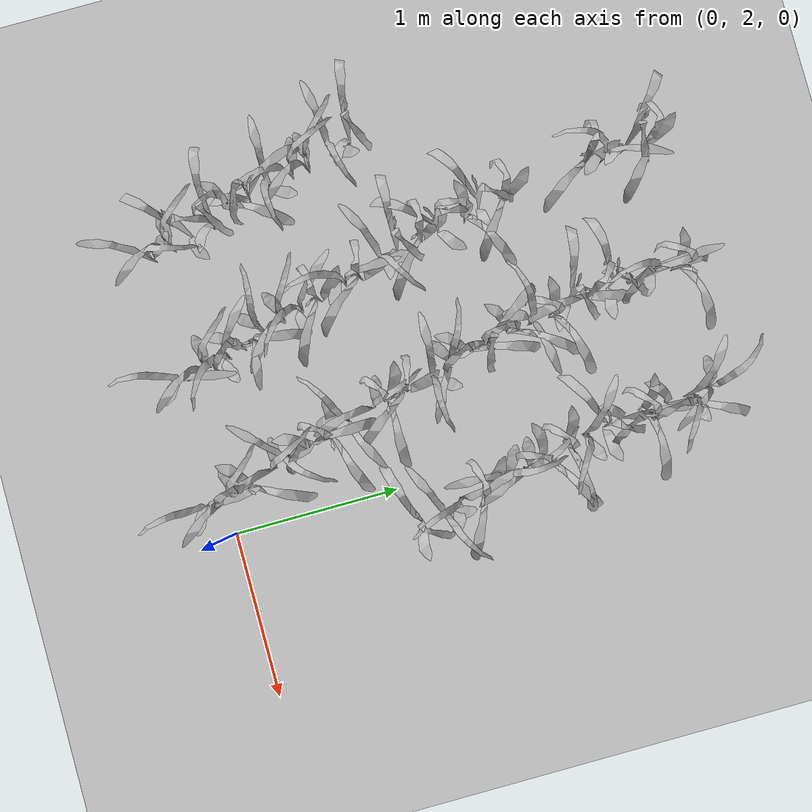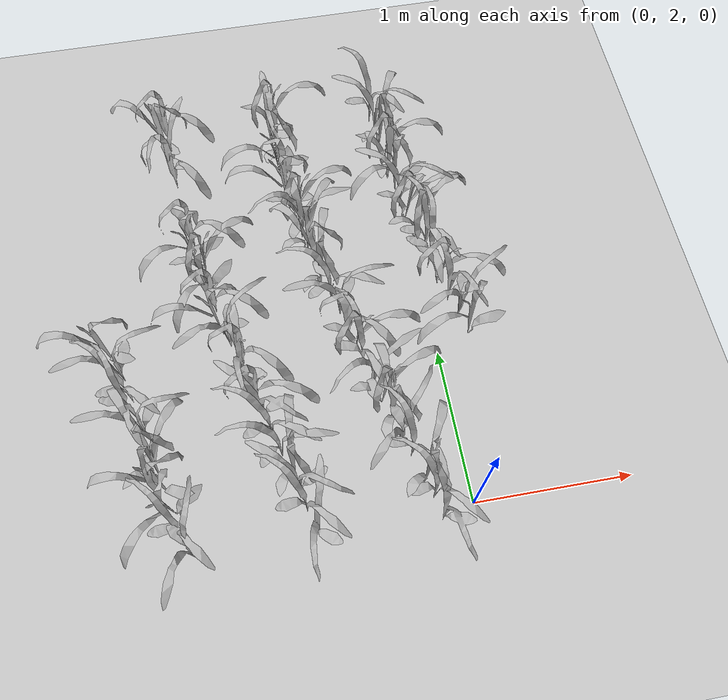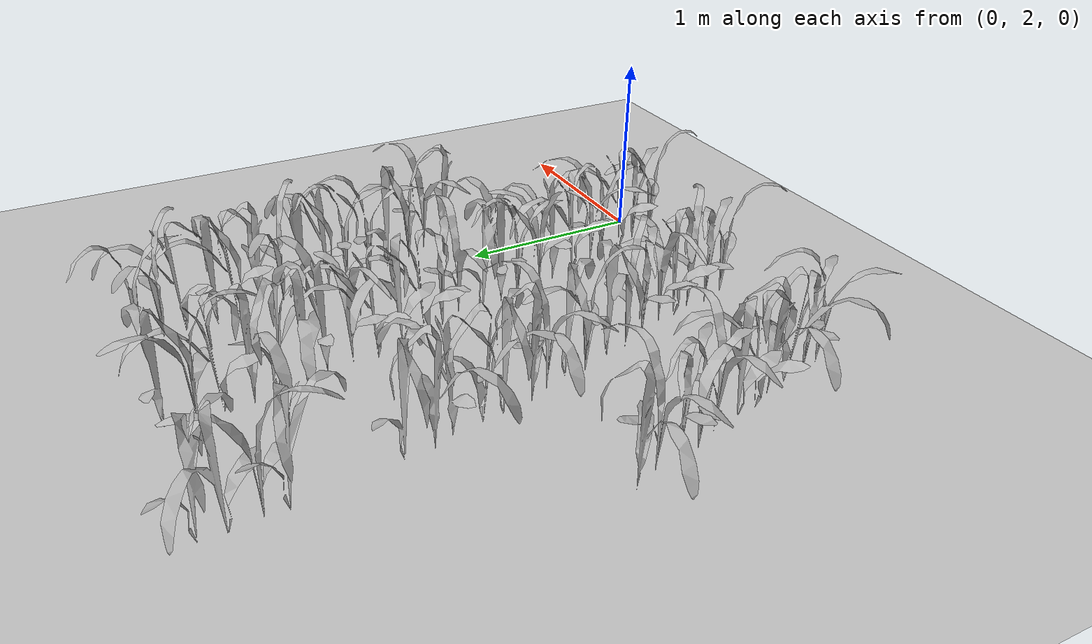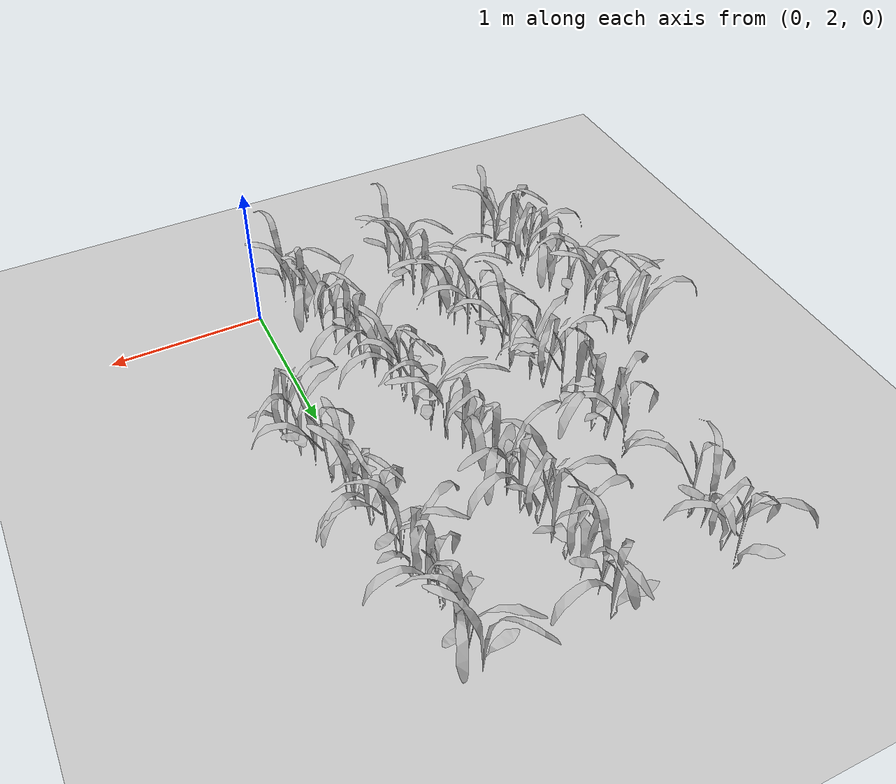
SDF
<sdf version="1.7">
 <world name="default">
  <model name="maize_02_0225">
   <pose>-1.69866 1.97323 -0 5e-06 2.8e-05 0.257611</pose>
   <link name="maize_02_link">
    <inertial>
     <pose>0 0 0.01 0 -0 0</pose>
     <mass>0.3</mass>
     <inertia>
      <ixx>0.00334167</ixx>
      <ixy>0</ixy>
      <ixz>0</ixz>
      <iyy>0.00334167</iyy>
      <iyz>0</iyz>
      <izz>1.66667e-05</izz>
     </inertia>
     <pose>0 0 0.1 0 -0 0</pose>
    </inertial>
    <visual name="visual">
     <geometry>
      <mesh><uri>model://maize_02/meshes/maize_02.dae</uri><scale>0.683166 0.683166 0.683166</scale></mesh>
     </geometry>
    </visual>
   </link>
   <static>0</static>
  </model>
  <model name="maize_02_0226">
   <pose>-1.7364 2.08989 -0.000245 -1.4e-05 -1.2e-05 1.21908</pose>
   <link name="maize_02_link">
    <inertial>
     <pose>0 0 0.01 0 -0 0</pose>
     <mass>0.3</mass>
     <inertia>
      <ixx>0.00334167</ixx>
      <ixy>0</ixy>
      <ixz>0</ixz>
      <iyy>0.00334167</iyy>
      <iyz>0</iyz>
      <izz>1.66667e-05</izz>
     </inertia>
     <pose>0 0 0.1 0 -0 0</pose>
    </inertial>
    <visual name="visual">
     <geometry>
      <mesh><uri>model://maize_02/meshes/maize_02.dae</uri><scale>0.683166 0.683166 0.683166</scale></mesh>
     </geometry>
    </visual>
   </link>
   <static>0</static>
  </model>
  <model name="maize_01_0227">
   <pose>-1.76908 2.23271 -1e-06 -6e-06 -7.9e-05 -1.51202</pose>
   <link name="maize_01_link">
    <inertial>
     <pose>0 0 0.01 0 -0 0</pose>
     <mass>0.3</mass>
     <inertia>
      <ixx>0.00334167</ixx>
      <ixy>0</ixy>
      <ixz>0</ixz>
      <iyy>0.00334167</iyy>
      <iyz>0</iyz>
      <izz>1.66667e-05</izz>
     </inertia>
     <pose>0 0 0.1 0 -0 0</pose>
    </inertial>
    <visual name="visual">
     <geometry>
      <mesh><uri>model://maize_01/meshes/maize_01.dae</uri><scale>0.683166 0.683166 0.683166</scale></mesh>
     </geometry>
    </visual>
   </link>
   <static>0</static>
  </model>
  <model name="maize_01_0228">
   <pose>-1.81012 2.37373 -0 5e-06 -2.8e-05 -2.44315</pose>
   <link name="maize_01_link">
    <inertial>
     <pose>0 0 0.01 0 -0 0</pose>
     <mass>0.3</mass>
     <inertia>
      <ixx>0.00334167</ixx>
      <ixy>0</ixy>
      <ixz>0</ixz>
      <iyy>0.00334167</iyy>
      <iyz>0</iyz>
      <izz>1.66667e-05</izz>
     </inertia>
     <pose>0 0 0.1 0 -0 0</pose>
    </inertial>
    <visual name="visual">
     <geometry>
      <mesh><uri>model://maize_01/meshes/maize_01.dae</uri><scale>0.683166 0.683166 0.683166</scale></mesh>
     </geometry>
    </visual>
   </link>
   <static>0</static>
  </model>
  <model name="maize_01_0229">
   <pose>-1.8613 2.48508 1e-06 3e-06 -0.000156 1.80592</pose>
   <link name="maize_01_link">
    <inertial>
     <pose>0 0 0.01 0 -0 0</pose>
     <mass>0.3</mass>
     <inertia>
      <ixx>0.00334167</ixx>
      <ixy>0</ixy>
      <ixz>0</ixz>
      <iyy>0.00334167</iyy>
      <iyz>0</iyz>
      <izz>1.66667e-05</izz>
     </inertia>
     <pose>0 0 0.1 0 -0 0</pose>
    </inertial>
    <visual name="visual">
     <geometry>
      <mesh><uri>model://maize_01/meshes/maize_01.dae</uri><scale>0.683166 0.683166 0.683166</scale></mesh>
     </geometry>
    </visual>
   </link>
   <static>0</static>
  </model>
  <model name="maize_01_0230">
   <pose>-1.88281 2.60481 -0 -5e-06 -2.8e-05 2.79415</pose>
   <link name="maize_01_link">
    <inertial>
     <pose>0 0 0.01 0 -0 0</pose>
     <mass>0.3</mass>
     <inertia>
      <ixx>0.00334167</ixx>
      <ixy>0</ixy>
      <ixz>0</ixz>
      <iyy>0.00334167</iyy>
      <iyz>0</iyz>
      <izz>1.66667e-05</izz>
     </inertia>
     <pose>0 0 0.1 0 -0 0</pose>
    </inertial>
    <visual name="visual">
     <geometry>
      <mesh><uri>model://maize_01/meshes/maize_01.dae</uri><scale>0.683166 0.683166 0.683166</scale></mesh>
     </geometry>
    </visual>
   </link>
   <static>0</static>
  </model>
  <model name="maize_02_0231">
   <pose>-1.91741 2.75949 -0.000245 1.2e-05 1.4e-05 -0.972009</pose>
   <link name="maize_02_link">
    <inertial>
     <pose>0 0 0.01 0 -0 0</pose>
     <mass>0.3</mass>
     <inertia>
      <ixx>0.00334167</ixx>
      <ixy>0</ixy>
      <ixz>0</ixz>
      <iyy>0.00334167</iyy>
      <iyz>0</iyz>
      <izz>1.66667e-05</izz>
     </inertia>
     <pose>0 0 0.1 0 -0 0</pose>
    </inertial>
    <visual name="visual">
     <geometry>
      <mesh><uri>model://maize_02/meshes/maize_02.dae</uri><scale>0.683166 0.683166 0.683166</scale></mesh>
     </geometry>
    </visual>
   </link>
   <static>0</static>
  </model>
  <model name="maize_02_0232">
   <pose>-1.97957 2.89013 1e-06 -3e-06 0.000156 0.91455</pose>
   <link name="maize_02_link">
    <inertial>
     <pose>0 0 0.01 0 -0 0</pose>
     <mass>0.3</mass>
     <inertia>
      <ixx>0.00334167</ixx>
      <ixy>0</ixy>
      <ixz>0</ixz>
      <iyy>0.00334167</iyy>
      <iyz>0</iyz>
      <izz>1.66667e-05</izz>
     </inertia>
     <pose>0 0 0.1 0 -0 0</pose>
    </inertial>
    <visual name="visual">
     <geometry>
      <mesh><uri>model://maize_02/meshes/maize_02.dae</uri><scale>0.683166 0.683166 0.683166</scale></mesh>
     </geometry>
    </visual>
   </link>
   <static>0</static>
  </model>
  <model name="maize_02_0233">
   <pose>-1.98932 2.99493 -0.000245 -1.2e-05 1.4e-05 1.321</pose>
   <link name="maize_02_link">
    <inertial>
     <pose>0 0 0.01 0 -0 0</pose>
     <mass>0.3</mass>
     <inertia>
      <ixx>0.00334167</ixx>
      <ixy>0</ixy>
      <ixz>0</ixz>
      <iyy>0.00334167</iyy>
      <iyz>0</iyz>
      <izz>1.66667e-05</izz>
     </inertia>
     <pose>0 0 0.1 0 -0 0</pose>
    </inertial>
    <visual name="visual">
     <geometry>
      <mesh><uri>model://maize_02/meshes/maize_02.dae</uri><scale>0.683166 0.683166 0.683166</scale></mesh>
     </geometry>
    </visual>
   </link>
   <static>0</static>
  </model>
  <model name="maize_02_0234">
   <pose>-2.03699 3.15571 1e-06 -0.000156 -3e-06 -0.791161</pose>
   <link name="maize_02_link">
    <inertial>
     <pose>0 0 0.01 0 -0 0</pose>
     <mass>0.3</mass>
     <inertia>
      <ixx>0.00334167</ixx>
      <ixy>0</ixy>
      <ixz>0</ixz>
      <iyy>0.00334167</iyy>
      <iyz>0</iyz>
      <izz>1.66667e-05</izz>
     </inertia>
     <pose>0 0 0.1 0 -0 0</pose>
    </inertial>
    <visual name="visual">
     <geometry>
      <mesh><uri>model://maize_02/meshes/maize_02.dae</uri><scale>0.683166 0.683166 0.683166</scale></mesh>
     </geometry>
    </visual>
   </link>
   <static>0</static>
  </model>
  <model name="maize_01_0235">
   <pose>-2.08381 3.28077 -0 2.8e-05 5e-06 -2.50641</pose>
   <link name="maize_01_link">
    <inertial>
     <pose>0 0 0.01 0 -0 0</pose>
     <mass>0.3</mass>
     <inertia>
      <ixx>0.00334167</ixx>
      <ixy>0</ixy>
      <ixz>0</ixz>
      <iyy>0.00334167</iyy>
      <iyz>0</iyz>
      <izz>1.66667e-05</izz>
     </inertia>
     <pose>0 0 0.1 0 -0 0</pose>
    </inertial>
    <visual name="visual">
     <geometry>
      <mesh><uri>model://maize_01/meshes/maize_01.dae</uri><scale>0.683166 0.683166 0.683166</scale></mesh>
     </geometry>
    </visual>
   </link>
   <static>0</static>
  </model>
  <model name="maize_02_0302">
   <pose>-0.954198 1.97898 -0 6e-06 4.8e-05 -2.73285</pose>
   <link name="maize_02_link">
    <inertial>
     <pose>0 0 0.01 0 -0 0</pose>
     <mass>0.3</mass>
     <inertia>
      <ixx>0.00334167</ixx>
      <ixy>0</ixy>
      <ixz>0</ixz>
      <iyy>0.00334167</iyy>
      <iyz>0</iyz>
      <izz>1.66667e-05</izz>
     </inertia>
     <pose>0 0 0.1 0 -0 0</pose>
    </inertial>
    <visual name="visual">
     <geometry>
      <mesh><uri>model://maize_02/meshes/maize_02.dae</uri><scale>0.683166 0.683166 0.683166</scale></mesh>
     </geometry>
    </visual>
   </link>
   <static>0</static>
  </model>
  <model name="maize_02_0303">
   <pose>-1.00234 2.11687 -1e-06 -7.9e-05 -6e-06 1.27908</pose>
   <link name="maize_02_link">
    <inertial>
     <pose>0 0 0.01 0 -0 0</pose>
     <mass>0.3</mass>
     <inertia>
      <ixx>0.00334167</ixx>
      <ixy>0</ixy>
      <ixz>0</ixz>
      <iyy>0.00334167</iyy>
      <iyz>0</iyz>
      <izz>1.66667e-05</izz>
     </inertia>
     <pose>0 0 0.1 0 -0 0</pose>
    </inertial>
    <visual name="visual">
     <geometry>
      <mesh><uri>model://maize_02/meshes/maize_02.dae</uri><scale>0.683166 0.683166 0.683166</scale></mesh>
     </geometry>
    </visual>
   </link>
   <static>0</static>
  </model>
  <model name="maize_02_0304">
   <pose>-1.01883 2.24745 1e-06 0.000156 -3e-06 -1.65232</pose>
   <link name="maize_02_link">
    <inertial>
     <pose>0 0 0.01 0 -0 0</pose>
     <mass>0.3</mass>
     <inertia>
      <ixx>0.00334167</ixx>
      <ixy>0</ixy>
      <ixz>0</ixz>
      <iyy>0.00334167</iyy>
      <iyz>0</iyz>
      <izz>1.66667e-05</izz>
     </inertia>
     <pose>0 0 0.1 0 -0 0</pose>
    </inertial>
    <visual name="visual">
     <geometry>
      <mesh><uri>model://maize_02/meshes/maize_02.dae</uri><scale>0.683166 0.683166 0.683166</scale></mesh>
     </geometry>
    </visual>
   </link>
   <static>0</static>
  </model>
  <model name="maize_01_0305">
   <pose>-1.04333 2.34856 1e-06 -3e-06 -0.000156 2.26615</pose>
   <link name="maize_01_link">
    <inertial>
     <pose>0 0 0.01 0 -0 0</pose>
     <mass>0.3</mass>
     <inertia>
      <ixx>0.00334167</ixx>
      <ixy>0</ixy>
      <ixz>0</ixz>
      <iyy>0.00334167</iyy>
      <iyz>0</iyz>
      <izz>1.66667e-05</izz>
     </inertia>
     <pose>0 0 0.1 0 -0 0</pose>
    </inertial>
    <visual name="visual">
     <geometry>
      <mesh><uri>model://maize_01/meshes/maize_01.dae</uri><scale>0.683166 0.683166 0.683166</scale></mesh>
     </geometry>
    </visual>
   </link>
   <static>0</static>
  </model>
  <model name="maize_02_0306">
   <pose>-1.10306 2.48812 1e-06 -3e-06 0.000156 2.016</pose>
   <link name="maize_02_link">
    <inertial>
     <pose>0 0 0.01 0 -0 0</pose>
     <mass>0.3</mass>
     <inertia>
      <ixx>0.00334167</ixx>
      <ixy>0</ixy>
      <ixz>0</ixz>
      <iyy>0.00334167</iyy>
      <iyz>0</iyz>
      <izz>1.66667e-05</izz>
     </inertia>
     <pose>0 0 0.1 0 -0 0</pose>
    </inertial>
    <visual name="visual">
     <geometry>
      <mesh><uri>model://maize_02/meshes/maize_02.dae</uri><scale>0.683166 0.683166 0.683166</scale></mesh>
     </geometry>
    </visual>
   </link>
   <static>0</static>
  </model>
  <model name="maize_02_0307">
   <pose>-1.14257 2.61559 -0 -5e-06 2.8e-05 1.54785</pose>
   <link name="maize_02_link">
    <inertial>
     <pose>0 0 0.01 0 -0 0</pose>
     <mass>0.3</mass>
     <inertia>
      <ixx>0.00334167</ixx>
      <ixy>0</ixy>
      <ixz>0</ixz>
      <iyy>0.00334167</iyy>
      <iyz>0</iyz>
      <izz>1.66667e-05</izz>
     </inertia>
     <pose>0 0 0.1 0 -0 0</pose>
    </inertial>
    <visual name="visual">
     <geometry>
      <mesh><uri>model://maize_02/meshes/maize_02.dae</uri><scale>0.683166 0.683166 0.683166</scale></mesh>
     </geometry>
    </visual>
   </link>
   <static>0</static>
  </model>
  <model name="maize_02_0308">
   <pose>-1.17646 2.73808 -1e-06 -8.9e-05 6e-06 -1.78323</pose>
   <link name="maize_02_link">
    <inertial>
     <pose>0 0 0.01 0 -0 0</pose>
     <mass>0.3</mass>
     <inertia>
      <ixx>0.00334167</ixx>
      <ixy>0</ixy>
      <ixz>0</ixz>
      <iyy>0.00334167</iyy>
      <iyz>0</iyz>
      <izz>1.66667e-05</izz>
     </inertia>
     <pose>0 0 0.1 0 -0 0</pose>
    </inertial>
    <visual name="visual">
     <geometry>
      <mesh><uri>model://maize_02/meshes/maize_02.dae</uri><scale>0.683166 0.683166 0.683166</scale></mesh>
     </geometry>
    </visual>
   </link>
   <static>0</static>
  </model>
  <model name="maize_01_0309">
   <pose>-1.2088 2.86539 1e-06 -3e-06 -0.000156 0.344051</pose>
   <link name="maize_01_link">
    <inertial>
     <pose>0 0 0.01 0 -0 0</pose>
     <mass>0.3</mass>
     <inertia>
      <ixx>0.00334167</ixx>
      <ixy>0</ixy>
      <ixz>0</ixz>
      <iyy>0.00334167</iyy>
      <iyz>0</iyz>
      <izz>1.66667e-05</izz>
     </inertia>
     <pose>0 0 0.1 0 -0 0</pose>
    </inertial>
    <visual name="visual">
     <geometry>
      <mesh><uri>model://maize_01/meshes/maize_01.dae</uri><scale>0.683166 0.683166 0.683166</scale></mesh>
     </geometry>
    </visual>
   </link>
   <static>0</static>
  </model>
  <model name="maize_02_0310">
   <pose>-1.26609 3.02682 -0 -6e-06 -4.8e-05 -2.52546</pose>
   <link name="maize_02_link">
    <inertial>
     <pose>0 0 0.01 0 -0 0</pose>
     <mass>0.3</mass>
     <inertia>
      <ixx>0.00334167</ixx>
      <ixy>0</ixy>
      <ixz>0</ixz>
      <iyy>0.00334167</iyy>
      <iyz>0</iyz>
      <izz>1.66667e-05</izz>
     </inertia>
     <pose>0 0 0.1 0 -0 0</pose>
    </inertial>
    <visual name="visual">
     <geometry>
      <mesh><uri>model://maize_02/meshes/maize_02.dae</uri><scale>0.683166 0.683166 0.683166</scale></mesh>
     </geometry>
    </visual>
   </link>
   <static>0</static>
  </model>
  <model name="maize_01_0311">
   <pose>-1.26642 3.13713 -0 5e-06 -2.8e-05 -0.001511</pose>
   <link name="maize_01_link">
    <inertial>
     <pose>0 0 0.01 0 -0 0</pose>
     <mass>0.3</mass>
     <inertia>
      <ixx>0.00334167</ixx>
      <ixy>0</ixy>
      <ixz>0</ixz>
      <iyy>0.00334167</iyy>
      <iyz>0</iyz>
      <izz>1.66667e-05</izz>
     </inertia>
     <pose>0 0 0.1 0 -0 0</pose>
    </inertial>
    <visual name="visual">
     <geometry>
      <mesh><uri>model://maize_01/meshes/maize_01.dae</uri><scale>0.683166 0.683166 0.683166</scale></mesh>
     </geometry>
    </visual>
   </link>
   <static>0</static>
  </model>
  <model name="maize_02_0312">
   <pose>-1.33169 3.27917 -1e-06 7.9e-05 -6e-06 -0.495715</pose>
   <link name="maize_02_link">
    <inertial>
     <pose>0 0 0.01 0 -0 0</pose>
     <mass>0.3</mass>
     <inertia>
      <ixx>0.00334167</ixx>
      <ixy>0</ixy>
      <ixz>0</ixz>
      <iyy>0.00334167</iyy>
      <iyz>0</iyz>
      <izz>1.66667e-05</izz>
     </inertia>
     <pose>0 0 0.1 0 -0 0</pose>
    </inertial>
    <visual name="visual">
     <geometry>
      <mesh><uri>model://maize_02/meshes/maize_02.dae</uri><scale>0.683166 0.683166 0.683166</scale></mesh>
     </geometry>
    </visual>
   </link>
   <static>0</static>
  </model>
  <model name="maize_01_0313">
   <pose>-1.37312 3.38122 -1e-06 -6e-06 -8.3e-05 -2.36866</pose>
   <link name="maize_01_link">
    <inertial>
     <pose>0 0 0.01 0 -0 0</pose>
     <mass>0.3</mass>
     <inertia>
      <ixx>0.00334167</ixx>
      <ixy>0</ixy>
      <ixz>0</ixz>
      <iyy>0.00334167</iyy>
      <iyz>0</iyz>
      <izz>1.66667e-05</izz>
     </inertia>
     <pose>0 0 0.1 0 -0 0</pose>
    </inertial>
    <visual name="visual">
     <geometry>
      <mesh><uri>model://maize_01/meshes/maize_01.dae</uri><scale>0.683166 0.683166 0.683166</scale></mesh>
     </geometry>
    </visual>
   </link>
   <static>0</static>
  </model>
  <model name="maize_01_0314">
   <pose>-1.40149 3.53858 -0.000245 -1.4e-05 1.2e-05 0.163749</pose>
   <link name="maize_01_link">
    <inertial>
     <pose>0 0 0.01 0 -0 0</pose>
     <mass>0.3</mass>
     <inertia>
      <ixx>0.00334167</ixx>
      <ixy>0</ixy>
      <ixz>0</ixz>
      <iyy>0.00334167</iyy>
      <iyz>0</iyz>
      <izz>1.66667e-05</izz>
     </inertia>
     <pose>0 0 0.1 0 -0 0</pose>
    </inertial>
    <visual name="visual">
     <geometry>
      <mesh><uri>model://maize_01/meshes/maize_01.dae</uri><scale>0.683166 0.683166 0.683166</scale></mesh>
     </geometry>
    </visual>
   </link>
   <static>0</static>
  </model>
  <model name="maize_01_0315">
   <pose>-1.41452 3.65039 -0.000245 -1.2e-05 1.4e-05 -1.33981</pose>
   <link name="maize_01_link">
    <inertial>
     <pose>0 0 0.01 0 -0 0</pose>
     <mass>0.3</mass>
     <inertia>
      <ixx>0.00334167</ixx>
      <ixy>0</ixy>
      <ixz>0</ixz>
      <iyy>0.00334167</iyy>
      <iyz>0</iyz>
      <izz>1.66667e-05</izz>
     </inertia>
     <pose>0 0 0.1 0 -0 0</pose>
    </inertial>
    <visual name="visual">
     <geometry>
      <mesh><uri>model://maize_01/meshes/maize_01.dae</uri><scale>0.683166 0.683166 0.683166</scale></mesh>
     </geometry>
    </visual>
   </link>
   <static>0</static>
  </model>
  <model name="maize_01_0316">
   <pose>-1.44039 3.8111 -0 2.8e-05 -5e-06 1.25328</pose>
   <link name="maize_01_link">
    <inertial>
     <pose>0 0 0.01 0 -0 0</pose>
     <mass>0.3</mass>
     <inertia>
      <ixx>0.00334167</ixx>
      <ixy>0</ixy>
      <ixz>0</ixz>
      <iyy>0.00334167</iyy>
      <iyz>0</iyz>
      <izz>1.66667e-05</izz>
     </inertia>
     <pose>0 0 0.1 0 -0 0</pose>
    </inertial>
    <visual name="visual">
     <geometry>
      <mesh><uri>model://maize_01/meshes/maize_01.dae</uri><scale>0.683166 0.683166 0.683166</scale></mesh>
     </geometry>
    </visual>
   </link>
   <static>0</static>
  </model>
  <model name="maize_01_0317">
   <pose>-1.4817 3.91634 -0 2.8e-05 -5e-06 -1.81015</pose>
   <link name="maize_01_link">
    <inertial>
     <pose>0 0 0.01 0 -0 0</pose>
     <mass>0.3</mass>
     <inertia>
      <ixx>0.00334167</ixx>
      <ixy>0</ixy>
      <ixz>0</ixz>
      <iyy>0.00334167</iyy>
      <iyz>0</iyz>
      <izz>1.66667e-05</izz>
     </inertia>
     <pose>0 0 0.1 0 -0 0</pose>
    </inertial>
    <visual name="visual">
     <geometry>
      <mesh><uri>model://maize_01/meshes/maize_01.dae</uri><scale>0.683166 0.683166 0.683166</scale></mesh>
     </geometry>
    </visual>
   </link>
   <static>0</static>
  </model>
  <model name="maize_01_0318">
   <pose>-1.4966 4.06194 -0.000245 1.2e-05 -1.4e-05 0.203784</pose>
   <link name="maize_01_link">
    <inertial>
     <pose>0 0 0.01 0 -0 0</pose>
     <mass>0.3</mass>
     <inertia>
      <ixx>0.00334167</ixx>
      <ixy>0</ixy>
      <ixz>0</ixz>
      <iyy>0.00334167</iyy>
      <iyz>0</iyz>
      <izz>1.66667e-05</izz>
     </inertia>
     <pose>0 0 0.1 0 -0 0</pose>
    </inertial>
    <visual name="visual">
     <geometry>
      <mesh><uri>model://maize_01/meshes/maize_01.dae</uri><scale>0.683166 0.683166 0.683166</scale></mesh>
     </geometry>
    </visual>
   </link>
   <static>0</static>
  </model>
  <model name="maize_01_0319">
   <pose>-1.57486 4.58904 -0 2.8e-05 -5e-06 -0.155134</pose>
   <link name="maize_01_link">
    <inertial>
     <pose>0 0 0.01 0 -0 0</pose>
     <mass>0.3</mass>
     <inertia>
      <ixx>0.00334167</ixx>
      <ixy>0</ixy>
      <ixz>0</ixz>
      <iyy>0.00334167</iyy>
      <iyz>0</iyz>
      <izz>1.66667e-05</izz>
     </inertia>
     <pose>0 0 0.1 0 -0 0</pose>
    </inertial>
    <visual name="visual">
     <geometry>
      <mesh><uri>model://maize_01/meshes/maize_01.dae</uri><scale>0.683166 0.683166 0.683166</scale></mesh>
     </geometry>
    </visual>
   </link>
   <static>0</static>
  </model>
  <model name="maize_02_0320">
   <pose>-1.57311 4.69787 -1e-06 -6e-06 7.9e-05 -2.94427</pose>
   <link name="maize_02_link">
    <inertial>
     <pose>0 0 0.01 0 -0 0</pose>
     <mass>0.3</mass>
     <inertia>
      <ixx>0.00334167</ixx>
      <ixy>0</ixy>
      <ixz>0</ixz>
      <iyy>0.00334167</iyy>
      <iyz>0</iyz>
      <izz>1.66667e-05</izz>
     </inertia>
     <pose>0 0 0.1 0 -0 0</pose>
    </inertial>
    <visual name="visual">
     <geometry>
      <mesh><uri>model://maize_02/meshes/maize_02.dae</uri><scale>0.683166 0.683166 0.683166</scale></mesh>
     </geometry>
    </visual>
   </link>
   <static>0</static>
  </model>
  <model name="maize_01_0321">
   <pose>-1.60271 4.85033 -1e-06 8.6e-05 6e-06 -2.98769</pose>
   <link name="maize_01_link">
    <inertial>
     <pose>0 0 0.01 0 -0 0</pose>
     <mass>0.3</mass>
     <inertia>
      <ixx>0.00334167</ixx>
      <ixy>0</ixy>
      <ixz>0</ixz>
      <iyy>0.00334167</iyy>
      <iyz>0</iyz>
      <izz>1.66667e-05</izz>
     </inertia>
     <pose>0 0 0.1 0 -0 0</pose>
    </inertial>
    <visual name="visual">
     <geometry>
      <mesh><uri>model://maize_01/meshes/maize_01.dae</uri><scale>0.683166 0.683166 0.683166</scale></mesh>
     </geometry>
    </visual>
   </link>
   <static>0</static>
  </model>
  <model name="maize_01_0322">
   <pose>-1.58975 4.9656 -1e-06 -7.9e-05 -6e-06 0.137604</pose>
   <link name="maize_01_link">
    <inertial>
     <pose>0 0 0.01 0 -0 0</pose>
     <mass>0.3</mass>
     <inertia>
      <ixx>0.00334167</ixx>
      <ixy>0</ixy>
      <ixz>0</ixz>
      <iyy>0.00334167</iyy>
      <iyz>0</iyz>
      <izz>1.66667e-05</izz>
     </inertia>
     <pose>0 0 0.1 0 -0 0</pose>
    </inertial>
    <visual name="visual">
     <geometry>
      <mesh><uri>model://maize_01/meshes/maize_01.dae</uri><scale>0.683166 0.683166 0.683166</scale></mesh>
     </geometry>
    </visual>
   </link>
   <static>0</static>
  </model>
  <model name="maize_02_0376">
   <pose>-0.208779 1.93366 1e-06 -0.000156 3e-06 -2.46979</pose>
   <link name="maize_02_link">
    <inertial>
     <pose>0 0 0.01 0 -0 0</pose>
     <mass>0.3</mass>
     <inertia>
      <ixx>0.00334167</ixx>
      <ixy>0</ixy>
      <ixz>0</ixz>
      <iyy>0.00334167</iyy>
      <iyz>0</iyz>
      <izz>1.66667e-05</izz>
     </inertia>
     <pose>0 0 0.1 0 -0 0</pose>
    </inertial>
    <visual name="visual">
     <geometry>
      <mesh><uri>model://maize_02/meshes/maize_02.dae</uri><scale>0.683166 0.683166 0.683166</scale></mesh>
     </geometry>
    </visual>
   </link>
   <static>0</static>
  </model>
  <model name="maize_02_0377">
   <pose>-0.235744 2.0703 1e-06 3e-06 -0.000156 1.25426</pose>
   <link name="maize_02_link">
    <inertial>
     <pose>0 0 0.01 0 -0 0</pose>
     <mass>0.3</mass>
     <inertia>
      <ixx>0.00334167</ixx>
      <ixy>0</ixy>
      <ixz>0</ixz>
      <iyy>0.00334167</iyy>
      <iyz>0</iyz>
      <izz>1.66667e-05</izz>
     </inertia>
     <pose>0 0 0.1 0 -0 0</pose>
    </inertial>
    <visual name="visual">
     <geometry>
      <mesh><uri>model://maize_02/meshes/maize_02.dae</uri><scale>0.683166 0.683166 0.683166</scale></mesh>
     </geometry>
    </visual>
   </link>
   <static>0</static>
  </model>
  <model name="maize_01_0378">
   <pose>-0.263312 2.17844 -0 -5e-06 -2.8e-05 1.9444</pose>
   <link name="maize_01_link">
    <inertial>
     <pose>0 0 0.01 0 -0 0</pose>
     <mass>0.3</mass>
     <inertia>
      <ixx>0.00334167</ixx>
      <ixy>0</ixy>
      <ixz>0</ixz>
      <iyy>0.00334167</iyy>
      <iyz>0</iyz>
      <izz>1.66667e-05</izz>
     </inertia>
     <pose>0 0 0.1 0 -0 0</pose>
    </inertial>
    <visual name="visual">
     <geometry>
      <mesh><uri>model://maize_01/meshes/maize_01.dae</uri><scale>0.683166 0.683166 0.683166</scale></mesh>
     </geometry>
    </visual>
   </link>
   <static>0</static>
  </model>
  <model name="maize_02_0379">
   <pose>-0.318999 2.34388 -0 -2.8e-05 -5e-06 0.990659</pose>
   <link name="maize_02_link">
    <inertial>
     <pose>0 0 0.01 0 -0 0</pose>
     <mass>0.3</mass>
     <inertia>
      <ixx>0.00334167</ixx>
      <ixy>0</ixy>
      <ixz>0</ixz>
      <iyy>0.00334167</iyy>
      <iyz>0</iyz>
      <izz>1.66667e-05</izz>
     </inertia>
     <pose>0 0 0.1 0 -0 0</pose>
    </inertial>
    <visual name="visual">
     <geometry>
      <mesh><uri>model://maize_02/meshes/maize_02.dae</uri><scale>0.683166 0.683166 0.683166</scale></mesh>
     </geometry>
    </visual>
   </link>
   <static>0</static>
  </model>
  <model name="maize_02_0380">
   <pose>-0.364258 2.44413 -0 -5e-06 -2.8e-05 -0.15348</pose>
   <link name="maize_02_link">
    <inertial>
     <pose>0 0 0.01 0 -0 0</pose>
     <mass>0.3</mass>
     <inertia>
      <ixx>0.00334167</ixx>
      <ixy>0</ixy>
      <ixz>0</ixz>
      <iyy>0.00334167</iyy>
      <iyz>0</iyz>
      <izz>1.66667e-05</izz>
     </inertia>
     <pose>0 0 0.1 0 -0 0</pose>
    </inertial>
    <visual name="visual">
     <geometry>
      <mesh><uri>model://maize_02/meshes/maize_02.dae</uri><scale>0.683166 0.683166 0.683166</scale></mesh>
     </geometry>
    </visual>
   </link>
   <static>0</static>
  </model>
  <model name="maize_01_0381">
   <pose>-0.392837 2.5824 1e-06 0.000156 -3e-06 2.42523</pose>
   <link name="maize_01_link">
    <inertial>
     <pose>0 0 0.01 0 -0 0</pose>
     <mass>0.3</mass>
     <inertia>
      <ixx>0.00334167</ixx>
      <ixy>0</ixy>
      <ixz>0</ixz>
      <iyy>0.00334167</iyy>
      <iyz>0</iyz>
      <izz>1.66667e-05</izz>
     </inertia>
     <pose>0 0 0.1 0 -0 0</pose>
    </inertial>
    <visual name="visual">
     <geometry>
      <mesh><uri>model://maize_01/meshes/maize_01.dae</uri><scale>0.683166 0.683166 0.683166</scale></mesh>
     </geometry>
    </visual>
   </link>
   <static>0</static>
  </model>
  <model name="maize_01_0382">
   <pose>-0.426534 2.72717 -0 5e-06 2.8e-05 1.15511</pose>
   <link name="maize_01_link">
    <inertial>
     <pose>0 0 0.01 0 -0 0</pose>
     <mass>0.3</mass>
     <inertia>
      <ixx>0.00334167</ixx>
      <ixy>0</ixy>
      <ixz>0</ixz>
      <iyy>0.00334167</iyy>
      <iyz>0</iyz>
      <izz>1.66667e-05</izz>
     </inertia>
     <pose>0 0 0.1 0 -0 0</pose>
    </inertial>
    <visual name="visual">
     <geometry>
      <mesh><uri>model://maize_01/meshes/maize_01.dae</uri><scale>0.683166 0.683166 0.683166</scale></mesh>
     </geometry>
    </visual>
   </link>
   <static>0</static>
  </model>
  <model name="maize_02_0383">
   <pose>-0.46661 2.83465 -0 2.8e-05 -5e-06 2.64738</pose>
   <link name="maize_02_link">
    <inertial>
     <pose>0 0 0.01 0 -0 0</pose>
     <mass>0.3</mass>
     <inertia>
      <ixx>0.00334167</ixx>
      <ixy>0</ixy>
      <ixz>0</ixz>
      <iyy>0.00334167</iyy>
      <iyz>0</iyz>
      <izz>1.66667e-05</izz>
     </inertia>
     <pose>0 0 0.1 0 -0 0</pose>
    </inertial>
    <visual name="visual">
     <geometry>
      <mesh><uri>model://maize_02/meshes/maize_02.dae</uri><scale>0.683166 0.683166 0.683166</scale></mesh>
     </geometry>
    </visual>
   </link>
   <static>0</static>
  </model>
  <model name="maize_02_0384">
   <pose>-0.510292 2.99396 -1e-06 -6e-06 8.9e-05 0.85316</pose>
   <link name="maize_02_link">
    <inertial>
     <pose>0 0 0.01 0 -0 0</pose>
     <mass>0.3</mass>
     <inertia>
      <ixx>0.00334167</ixx>
      <ixy>0</ixy>
      <ixz>0</ixz>
      <iyy>0.00334167</iyy>
      <iyz>0</iyz>
      <izz>1.66667e-05</izz>
     </inertia>
     <pose>0 0 0.1 0 -0 0</pose>
    </inertial>
    <visual name="visual">
     <geometry>
      <mesh><uri>model://maize_02/meshes/maize_02.dae</uri><scale>0.683166 0.683166 0.683166</scale></mesh>
     </geometry>
    </visual>
   </link>
   <static>0</static>
  </model>
  <model name="maize_01_0385">
   <pose>-0.536076 3.10361 -1e-06 7.9e-05 -6e-06 0.797373</pose>
   <link name="maize_01_link">
    <inertial>
     <pose>0 0 0.01 0 -0 0</pose>
     <mass>0.3</mass>
     <inertia>
      <ixx>0.00334167</ixx>
      <ixy>0</ixy>
      <ixz>0</ixz>
      <iyy>0.00334167</iyy>
      <iyz>0</iyz>
      <izz>1.66667e-05</izz>
     </inertia>
     <pose>0 0 0.1 0 -0 0</pose>
    </inertial>
    <visual name="visual">
     <geometry>
      <mesh><uri>model://maize_01/meshes/maize_01.dae</uri><scale>0.683166 0.683166 0.683166</scale></mesh>
     </geometry>
    </visual>
   </link>
   <static>0</static>
  </model>
  <model name="maize_01_0386">
   <pose>-0.55675 3.22541 -1e-06 8.3e-05 -6e-06 -0.113978</pose>
   <link name="maize_01_link">
    <inertial>
     <pose>0 0 0.01 0 -0 0</pose>
     <mass>0.3</mass>
     <inertia>
      <ixx>0.00334167</ixx>
      <ixy>0</ixy>
      <ixz>0</ixz>
      <iyy>0.00334167</iyy>
      <iyz>0</iyz>
      <izz>1.66667e-05</izz>
     </inertia>
     <pose>0 0 0.1 0 -0 0</pose>
    </inertial>
    <visual name="visual">
     <geometry>
      <mesh><uri>model://maize_01/meshes/maize_01.dae</uri><scale>0.683166 0.683166 0.683166</scale></mesh>
     </geometry>
    </visual>
   </link>
   <static>0</static>
  </model>
  <model name="maize_02_0387">
   <pose>-0.586219 3.38658 -0 -2.8e-05 -5e-06 -0.98601</pose>
   <link name="maize_02_link">
    <inertial>
     <pose>0 0 0.01 0 -0 0</pose>
     <mass>0.3</mass>
     <inertia>
      <ixx>0.00334167</ixx>
      <ixy>0</ixy>
      <ixz>0</ixz>
      <iyy>0.00334167</iyy>
      <iyz>0</iyz>
      <izz>1.66667e-05</izz>
     </inertia>
     <pose>0 0 0.1 0 -0 0</pose>
    </inertial>
    <visual name="visual">
     <geometry>
      <mesh><uri>model://maize_02/meshes/maize_02.dae</uri><scale>0.683166 0.683166 0.683166</scale></mesh>
     </geometry>
    </visual>
   </link>
   <static>0</static>
  </model>
  <model name="maize_02_0388">
   <pose>-0.627814 3.49285 -1e-06 -6e-06 8.3e-05 1.71558</pose>
   <link name="maize_02_link">
    <inertial>
     <pose>0 0 0.01 0 -0 0</pose>
     <mass>0.3</mass>
     <inertia>
      <ixx>0.00334167</ixx>
      <ixy>0</ixy>
      <ixz>0</ixz>
      <iyy>0.00334167</iyy>
      <iyz>0</iyz>
      <izz>1.66667e-05</izz>
     </inertia>
     <pose>0 0 0.1 0 -0 0</pose>
    </inertial>
    <visual name="visual">
     <geometry>
      <mesh><uri>model://maize_02/meshes/maize_02.dae</uri><scale>0.683166 0.683166 0.683166</scale></mesh>
     </geometry>
    </visual>
   </link>
   <static>0</static>
  </model>
  <model name="maize_01_0389">
   <pose>-0.677575 3.61121 -0 5e-06 -2.8e-05 2.1177</pose>
   <link name="maize_01_link">
    <inertial>
     <pose>0 0 0.01 0 -0 0</pose>
     <mass>0.3</mass>
     <inertia>
      <ixx>0.00334167</ixx>
      <ixy>0</ixy>
      <ixz>0</ixz>
      <iyy>0.00334167</iyy>
      <iyz>0</iyz>
      <izz>1.66667e-05</izz>
     </inertia>
     <pose>0 0 0.1 0 -0 0</pose>
    </inertial>
    <visual name="visual">
     <geometry>
      <mesh><uri>model://maize_01/meshes/maize_01.dae</uri><scale>0.683166 0.683166 0.683166</scale></mesh>
     </geometry>
    </visual>
   </link>
   <static>0</static>
  </model>
  <model name="maize_01_0390">
   <pose>-0.688016 3.74147 -0 -5e-06 2.8e-05 2.98443</pose>
   <link name="maize_01_link">
    <inertial>
     <pose>0 0 0.01 0 -0 0</pose>
     <mass>0.3</mass>
     <inertia>
      <ixx>0.00334167</ixx>
      <ixy>0</ixy>
      <ixz>0</ixz>
      <iyy>0.00334167</iyy>
      <iyz>0</iyz>
      <izz>1.66667e-05</izz>
     </inertia>
     <pose>0 0 0.1 0 -0 0</pose>
    </inertial>
    <visual name="visual">
     <geometry>
      <mesh><uri>model://maize_01/meshes/maize_01.dae</uri><scale>0.683166 0.683166 0.683166</scale></mesh>
     </geometry>
    </visual>
   </link>
   <static>0</static>
  </model>
  <model name="maize_01_0391">
   <pose>-0.726064 3.88546 -0.000245 -1.4e-05 -1.2e-05 1.75423</pose>
   <link name="maize_01_link">
    <inertial>
     <pose>0 0 0.01 0 -0 0</pose>
     <mass>0.3</mass>
     <inertia>
      <ixx>0.00334167</ixx>
      <ixy>0</ixy>
      <ixz>0</ixz>
      <iyy>0.00334167</iyy>
      <iyz>0</iyz>
      <izz>1.66667e-05</izz>
     </inertia>
     <pose>0 0 0.1 0 -0 0</pose>
    </inertial>
    <visual name="visual">
     <geometry>
      <mesh><uri>model://maize_01/meshes/maize_01.dae</uri><scale>0.683166 0.683166 0.683166</scale></mesh>
     </geometry>
    </visual>
   </link>
   <static>0</static>
  </model>
  <model name="maize_02_0392">
   <pose>-0.744671 4.021 -0 2.8e-05 5e-06 2.32746</pose>
   <link name="maize_02_link">
    <inertial>
     <pose>0 0 0.01 0 -0 0</pose>
     <mass>0.3</mass>
     <inertia>
      <ixx>0.00334167</ixx>
      <ixy>0</ixy>
      <ixz>0</ixz>
      <iyy>0.00334167</iyy>
      <iyz>0</iyz>
      <izz>1.66667e-05</izz>
     </inertia>
     <pose>0 0 0.1 0 -0 0</pose>
    </inertial>
    <visual name="visual">
     <geometry>
      <mesh><uri>model://maize_02/meshes/maize_02.dae</uri><scale>0.683166 0.683166 0.683166</scale></mesh>
     </geometry>
    </visual>
   </link>
   <static>0</static>
  </model>
  <model name="maize_01_0393">
   <pose>-0.753721 4.1526 1e-06 0.000156 -3e-06 1.06045</pose>
   <link name="maize_01_link">
    <inertial>
     <pose>0 0 0.01 0 -0 0</pose>
     <mass>0.3</mass>
     <inertia>
      <ixx>0.00334167</ixx>
      <ixy>0</ixy>
      <ixz>0</ixz>
      <iyy>0.00334167</iyy>
      <iyz>0</iyz>
      <izz>1.66667e-05</izz>
     </inertia>
     <pose>0 0 0.1 0 -0 0</pose>
    </inertial>
    <visual name="visual">
     <geometry>
      <mesh><uri>model://maize_01/meshes/maize_01.dae</uri><scale>0.683166 0.683166 0.683166</scale></mesh>
     </geometry>
    </visual>
   </link>
   <static>0</static>
  </model>
  <model name="maize_01_0394">
   <pose>-0.802756 4.27438 -0.000245 -1.2e-05 1.4e-05 -2.55967</pose>
   <link name="maize_01_link">
    <inertial>
     <pose>0 0 0.01 0 -0 0</pose>
     <mass>0.3</mass>
     <inertia>
      <ixx>0.00334167</ixx>
      <ixy>0</ixy>
      <ixz>0</ixz>
      <iyy>0.00334167</iyy>
      <iyz>0</iyz>
      <izz>1.66667e-05</izz>
     </inertia>
     <pose>0 0 0.1 0 -0 0</pose>
    </inertial>
    <visual name="visual">
     <geometry>
      <mesh><uri>model://maize_01/meshes/maize_01.dae</uri><scale>0.683166 0.683166 0.683166</scale></mesh>
     </geometry>
    </visual>
   </link>
   <static>0</static>
  </model>
  <model name="maize_01_0395">
   <pose>-0.805259 4.40834 -0 -2.8e-05 5e-06 -0.644289</pose>
   <link name="maize_01_link">
    <inertial>
     <pose>0 0 0.01 0 -0 0</pose>
     <mass>0.3</mass>
     <inertia>
      <ixx>0.00334167</ixx>
      <ixy>0</ixy>
      <ixz>0</ixz>
      <iyy>0.00334167</iyy>
      <iyz>0</iyz>
      <izz>1.66667e-05</izz>
     </inertia>
     <pose>0 0 0.1 0 -0 0</pose>
    </inertial>
    <visual name="visual">
     <geometry>
      <mesh><uri>model://maize_01/meshes/maize_01.dae</uri><scale>0.683166 0.683166 0.683166</scale></mesh>
     </geometry>
    </visual>
   </link>
   <static>0</static>
  </model>
  <model name="maize_01_0396">
   <pose>-0.81977 4.53349 -0 2.8e-05 -5e-06 -2.19267</pose>
   <link name="maize_01_link">
    <inertial>
     <pose>0 0 0.01 0 -0 0</pose>
     <mass>0.3</mass>
     <inertia>
      <ixx>0.00334167</ixx>
      <ixy>0</ixy>
      <ixz>0</ixz>
      <iyy>0.00334167</iyy>
      <iyz>0</iyz>
      <izz>1.66667e-05</izz>
     </inertia>
     <pose>0 0 0.1 0 -0 0</pose>
    </inertial>
    <visual name="visual">
     <geometry>
      <mesh><uri>model://maize_01/meshes/maize_01.dae</uri><scale>0.683166 0.683166 0.683166</scale></mesh>
     </geometry>
    </visual>
   </link>
   <static>0</static>
  </model>
  <model name="maize_01_0397">
   <pose>-0.819804 4.67295 1e-06 -3e-06 0.000156 2.37501</pose>
   <link name="maize_01_link">
    <inertial>
     <pose>0 0 0.01 0 -0 0</pose>
     <mass>0.3</mass>
     <inertia>
      <ixx>0.00334167</ixx>
      <ixy>0</ixy>
      <ixz>0</ixz>
      <iyy>0.00334167</iyy>
      <iyz>0</iyz>
      <izz>1.66667e-05</izz>
     </inertia>
     <pose>0 0 0.1 0 -0 0</pose>
    </inertial>
    <visual name="visual">
     <geometry>
      <mesh><uri>model://maize_01/meshes/maize_01.dae</uri><scale>0.683166 0.683166 0.683166</scale></mesh>
     </geometry>
    </visual>
   </link>
   <static>0</static>
  </model>
  <model name="maize_02_0398">
   <pose>-0.848332 4.79952 1e-06 -3e-06 -0.000156 -2.51271</pose>
   <link name="maize_02_link">
    <inertial>
     <pose>0 0 0.01 0 -0 0</pose>
     <mass>0.3</mass>
     <inertia>
      <ixx>0.00334167</ixx>
      <ixy>0</ixy>
      <ixz>0</ixz>
      <iyy>0.00334167</iyy>
      <iyz>0</iyz>
      <izz>1.66667e-05</izz>
     </inertia>
     <pose>0 0 0.1 0 -0 0</pose>
    </inertial>
    <visual name="visual">
     <geometry>
      <mesh><uri>model://maize_02/meshes/maize_02.dae</uri><scale>0.683166 0.683166 0.683166</scale></mesh>
     </geometry>
    </visual>
   </link>
   <static>0</static>
  </model>
  <model name="maize_01_0399">
   <pose>-0.833034 4.9396 -0 2.8e-05 -5e-06 0.893653</pose>
   <link name="maize_01_link">
    <inertial>
     <pose>0 0 0.01 0 -0 0</pose>
     <mass>0.3</mass>
     <inertia>
      <ixx>0.00334167</ixx>
      <ixy>0</ixy>
      <ixz>0</ixz>
      <iyy>0.00334167</iyy>
      <iyz>0</iyz>
      <izz>1.66667e-05</izz>
     </inertia>
     <pose>0 0 0.1 0 -0 0</pose>
    </inertial>
    <visual name="visual">
     <geometry>
      <mesh><uri>model://maize_01/meshes/maize_01.dae</uri><scale>0.683166 0.683166 0.683166</scale></mesh>
     </geometry>
    </visual>
   </link>
   <static>0</static>
  </model>
  <model name="maize_01_0462">
   <pose>0.226738 3.10392 1e-06 -3e-06 0.000156 -2.01396</pose>
   <link name="maize_01_link">
    <inertial>
     <pose>0 0 0.01 0 -0 0</pose>
     <mass>0.3</mass>
     <inertia>
      <ixx>0.00334167</ixx>
      <ixy>0</ixy>
      <ixz>0</ixz>
      <iyy>0.00334167</iyy>
      <iyz>0</iyz>
      <izz>1.66667e-05</izz>
     </inertia>
     <pose>0 0 0.1 0 -0 0</pose>
    </inertial>
    <visual name="visual">
     <geometry>
      <mesh><uri>model://maize_01/meshes/maize_01.dae</uri><scale>0.683166 0.683166 0.683166</scale></mesh>
     </geometry>
    </visual>
   </link>
   <static>0</static>
  </model>
  <model name="maize_02_0463">
   <pose>0.190908 3.24507 -0.000245 -1.2e-05 1.4e-05 -0.51373</pose>
   <link name="maize_02_link">
    <inertial>
     <pose>0 0 0.01 0 -0 0</pose>
     <mass>0.3</mass>
     <inertia>
      <ixx>0.00334167</ixx>
      <ixy>0</ixy>
      <ixz>0</ixz>
      <iyy>0.00334167</iyy>
      <iyz>0</iyz>
      <izz>1.66667e-05</izz>
     </inertia>
     <pose>0 0 0.1 0 -0 0</pose>
    </inertial>
    <visual name="visual">
     <geometry>
      <mesh><uri>model://maize_02/meshes/maize_02.dae</uri><scale>0.683166 0.683166 0.683166</scale></mesh>
     </geometry>
    </visual>
   </link>
   <static>0</static>
  </model>
  <model name="maize_02_0464">
   <pose>0.145538 3.35835 -0 -5e-06 -2.8e-05 -2.2655</pose>
   <link name="maize_02_link">
    <inertial>
     <pose>0 0 0.01 0 -0 0</pose>
     <mass>0.3</mass>
     <inertia>
      <ixx>0.00334167</ixx>
      <ixy>0</ixy>
      <ixz>0</ixz>
      <iyy>0.00334167</iyy>
      <iyz>0</iyz>
      <izz>1.66667e-05</izz>
     </inertia>
     <pose>0 0 0.1 0 -0 0</pose>
    </inertial>
    <visual name="visual">
     <geometry>
      <mesh><uri>model://maize_02/meshes/maize_02.dae</uri><scale>0.683166 0.683166 0.683166</scale></mesh>
     </geometry>
    </visual>
   </link>
   <static>0</static>
  </model>
  <model name="maize_01_0465">
   <pose>0.108053 3.50242 -0 2.8e-05 -5e-06 0.364292</pose>
   <link name="maize_01_link">
    <inertial>
     <pose>0 0 0.01 0 -0 0</pose>
     <mass>0.3</mass>
     <inertia>
      <ixx>0.00334167</ixx>
      <ixy>0</ixy>
      <ixz>0</ixz>
      <iyy>0.00334167</iyy>
      <iyz>0</iyz>
      <izz>1.66667e-05</izz>
     </inertia>
     <pose>0 0 0.1 0 -0 0</pose>
    </inertial>
    <visual name="visual">
     <geometry>
      <mesh><uri>model://maize_01/meshes/maize_01.dae</uri><scale>0.683166 0.683166 0.683166</scale></mesh>
     </geometry>
    </visual>
   </link>
   <static>0</static>
  </model>
  <model name="maize_02_0466">
   <pose>0.065773 3.62826 -0 4.8e-05 -6e-06 0.558374</pose>
   <link name="maize_02_link">
    <inertial>
     <pose>0 0 0.01 0 -0 0</pose>
     <mass>0.3</mass>
     <inertia>
      <ixx>0.00334167</ixx>
      <ixy>0</ixy>
      <ixz>0</ixz>
      <iyy>0.00334167</iyy>
      <iyz>0</iyz>
      <izz>1.66667e-05</izz>
     </inertia>
     <pose>0 0 0.1 0 -0 0</pose>
    </inertial>
    <visual name="visual">
     <geometry>
      <mesh><uri>model://maize_02/meshes/maize_02.dae</uri><scale>0.683166 0.683166 0.683166</scale></mesh>
     </geometry>
    </visual>
   </link>
   <static>0</static>
  </model>
  <model name="maize_02_0467">
   <pose>0.070025 3.76563 -0.000245 1.2e-05 -1.4e-05 0.986291</pose>
   <link name="maize_02_link">
    <inertial>
     <pose>0 0 0.01 0 -0 0</pose>
     <mass>0.3</mass>
     <inertia>
      <ixx>0.00334167</ixx>
      <ixy>0</ixy>
      <ixz>0</ixz>
      <iyy>0.00334167</iyy>
      <iyz>0</iyz>
      <izz>1.66667e-05</izz>
     </inertia>
     <pose>0 0 0.1 0 -0 0</pose>
    </inertial>
    <visual name="visual">
     <geometry>
      <mesh><uri>model://maize_02/meshes/maize_02.dae</uri><scale>0.683166 0.683166 0.683166</scale></mesh>
     </geometry>
    </visual>
   </link>
   <static>0</static>
  </model>
  <model name="maize_01_0468">
   <pose>0.03373 3.88251 -0.000245 1.2e-05 -1.4e-05 1.33897</pose>
   <link name="maize_01_link">
    <inertial>
     <pose>0 0 0.01 0 -0 0</pose>
     <mass>0.3</mass>
     <inertia>
      <ixx>0.00334167</ixx>
      <ixy>0</ixy>
      <ixz>0</ixz>
      <iyy>0.00334167</iyy>
      <iyz>0</iyz>
      <izz>1.66667e-05</izz>
     </inertia>
     <pose>0 0 0.1 0 -0 0</pose>
    </inertial>
    <visual name="visual">
     <geometry>
      <mesh><uri>model://maize_01/meshes/maize_01.dae</uri><scale>0.683166 0.683166 0.683166</scale></mesh>
     </geometry>
    </visual>
   </link>
   <static>0</static>
  </model>
  <model name="maize_01_0469">
   <pose>-0.012019 4.0307 1e-06 0.000156 -3e-06 0.845524</pose>
   <link name="maize_01_link">
    <inertial>
     <pose>0 0 0.01 0 -0 0</pose>
     <mass>0.3</mass>
     <inertia>
      <ixx>0.00334167</ixx>
      <ixy>0</ixy>
      <ixz>0</ixz>
      <iyy>0.00334167</iyy>
      <iyz>0</iyz>
      <izz>1.66667e-05</izz>
     </inertia>
     <pose>0 0 0.1 0 -0 0</pose>
    </inertial>
    <visual name="visual">
     <geometry>
      <mesh><uri>model://maize_01/meshes/maize_01.dae</uri><scale>0.683166 0.683166 0.683166</scale></mesh>
     </geometry>
    </visual>
   </link>
   <static>0</static>
  </model>
  <model name="maize_02_0470">
   <pose>-0.024292 4.15643 -0 -2.8e-05 -5e-06 -1.60006</pose>
   <link name="maize_02_link">
    <inertial>
     <pose>0 0 0.01 0 -0 0</pose>
     <mass>0.3</mass>
     <inertia>
      <ixx>0.00334167</ixx>
      <ixy>0</ixy>
      <ixz>0</ixz>
      <iyy>0.00334167</iyy>
      <iyz>0</iyz>
      <izz>1.66667e-05</izz>
     </inertia>
     <pose>0 0 0.1 0 -0 0</pose>
    </inertial>
    <visual name="visual">
     <geometry>
      <mesh><uri>model://maize_02/meshes/maize_02.dae</uri><scale>0.683166 0.683166 0.683166</scale></mesh>
     </geometry>
    </visual>
   </link>
   <static>0</static>
  </model>
  <model name="maize_01_0471">
   <pose>-0.029644 4.2838 -0 -6e-06 -4.8e-05 -1.84193</pose>
   <link name="maize_01_link">
    <inertial>
     <pose>0 0 0.01 0 -0 0</pose>
     <mass>0.3</mass>
     <inertia>
      <ixx>0.00334167</ixx>
      <ixy>0</ixy>
      <ixz>0</ixz>
      <iyy>0.00334167</iyy>
      <iyz>0</iyz>
      <izz>1.66667e-05</izz>
     </inertia>
     <pose>0 0 0.1 0 -0 0</pose>
    </inertial>
    <visual name="visual">
     <geometry>
      <mesh><uri>model://maize_01/meshes/maize_01.dae</uri><scale>0.683166 0.683166 0.683166</scale></mesh>
     </geometry>
    </visual>
   </link>
   <static>0</static>
  </model>
  <model name="maize_01_0472">
   <pose>-0.055943 4.4076 -1e-06 -6e-06 -8.3e-05 2.31761</pose>
   <link name="maize_01_link">
    <inertial>
     <pose>0 0 0.01 0 -0 0</pose>
     <mass>0.3</mass>
     <inertia>
      <ixx>0.00334167</ixx>
      <ixy>0</ixy>
      <ixz>0</ixz>
      <iyy>0.00334167</iyy>
      <iyz>0</iyz>
      <izz>1.66667e-05</izz>
     </inertia>
     <pose>0 0 0.1 0 -0 0</pose>
    </inertial>
    <visual name="visual">
     <geometry>
      <mesh><uri>model://maize_01/meshes/maize_01.dae</uri><scale>0.683166 0.683166 0.683166</scale></mesh>
     </geometry>
    </visual>
   </link>
   <static>0</static>
  </model>
  <model name="maize_01_0473">
   <pose>-0.074626 4.52068 -1e-06 6e-06 8.9e-05 0.732822</pose>
   <link name="maize_01_link">
    <inertial>
     <pose>0 0 0.01 0 -0 0</pose>
     <mass>0.3</mass>
     <inertia>
      <ixx>0.00334167</ixx>
      <ixy>0</ixy>
      <ixz>0</ixz>
      <iyy>0.00334167</iyy>
      <iyz>0</iyz>
      <izz>1.66667e-05</izz>
     </inertia>
     <pose>0 0 0.1 0 -0 0</pose>
    </inertial>
    <visual name="visual">
     <geometry>
      <mesh><uri>model://maize_01/meshes/maize_01.dae</uri><scale>0.683166 0.683166 0.683166</scale></mesh>
     </geometry>
    </visual>
   </link>
   <static>0</static>
  </model>
  <model name="maize_01_0474">
   <pose>-0.06933 4.68585 -0.000245 -1.2e-05 1.4e-05 1.95041</pose>
   <link name="maize_01_link">
    <inertial>
     <pose>0 0 0.01 0 -0 0</pose>
     <mass>0.3</mass>
     <inertia>
      <ixx>0.00334167</ixx>
      <ixy>0</ixy>
      <ixz>0</ixz>
      <iyy>0.00334167</iyy>
      <iyz>0</iyz>
      <izz>1.66667e-05</izz>
     </inertia>
     <pose>0 0 0.1 0 -0 0</pose>
    </inertial>
    <visual name="visual">
     <geometry>
      <mesh><uri>model://maize_01/meshes/maize_01.dae</uri><scale>0.683166 0.683166 0.683166</scale></mesh>
     </geometry>
    </visual>
   </link>
   <static>0</static>
  </model>
  <model name="maize_02_0475">
   <pose>-0.082029 4.80133 -0 5e-06 2.8e-05 -1.6236</pose>
   <link name="maize_02_link">
    <inertial>
     <pose>0 0 0.01 0 -0 0</pose>
     <mass>0.3</mass>
     <inertia>
      <ixx>0.00334167</ixx>
      <ixy>0</ixy>
      <ixz>0</ixz>
      <iyy>0.00334167</iyy>
      <iyz>0</iyz>
      <izz>1.66667e-05</izz>
     </inertia>
     <pose>0 0 0.1 0 -0 0</pose>
    </inertial>
    <visual name="visual">
     <geometry>
      <mesh><uri>model://maize_02/meshes/maize_02.dae</uri><scale>0.683166 0.683166 0.683166</scale></mesh>
     </geometry>
    </visual>
   </link>
   <static>0</static>
  </model>
  <model name="maize_02_0476">
   <pose>-0.102906 4.91887 -1e-06 8.6e-05 -6e-06 1.16397</pose>
   <link name="maize_02_link">
    <inertial>
     <pose>0 0 0.01 0 -0 0</pose>
     <mass>0.3</mass>
     <inertia>
      <ixx>0.00334167</ixx>
      <ixy>0</ixy>
      <ixz>0</ixz>
      <iyy>0.00334167</iyy>
      <iyz>0</iyz>
      <izz>1.66667e-05</izz>
     </inertia>
     <pose>0 0 0.1 0 -0 0</pose>
    </inertial>
    <visual name="visual">
     <geometry>
      <mesh><uri>model://maize_02/meshes/maize_02.dae</uri><scale>0.683166 0.683166 0.683166</scale></mesh>
     </geometry>
    </visual>
   </link>
   <static>0</static>
  </model>
  <model name="ground_plane">
   <static>1</static>
   <link name="link">
    <collision name="collision">
     <geometry><plane><normal>0 0 1</normal><size>100 100</size></plane></geometry>
     <surface>
      <contact><collide_bitmask>65535</collide_bitmask></contact>
      <friction><ode><mu>100</mu><mu2>50</mu2></ode></friction>
     </surface>
    </collision>
    <visual name="visual">
     <cast_shadows>0</cast_shadows>
     <geometry><plane><normal>0 0 1</normal><size>100 100</size></plane></geometry>
     <material>
      <script><uri>file://media/materials/scripts/gazebo.material</uri><name>Gazebo/Grey</name></script>
     </material>
    </visual>
   </link>
   <pose>-13.7732 9.25996 0 0 -0 0</pose>
  </model>
 </world>
</sdf>
